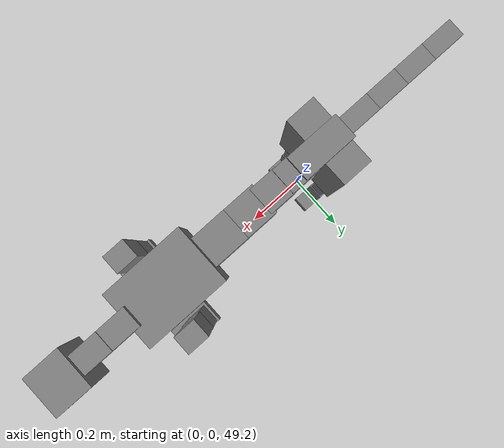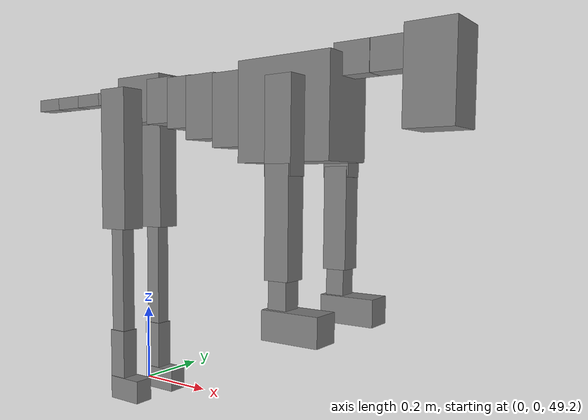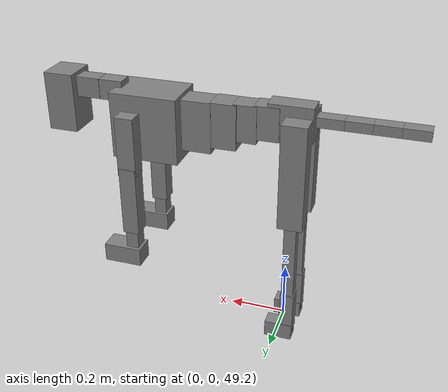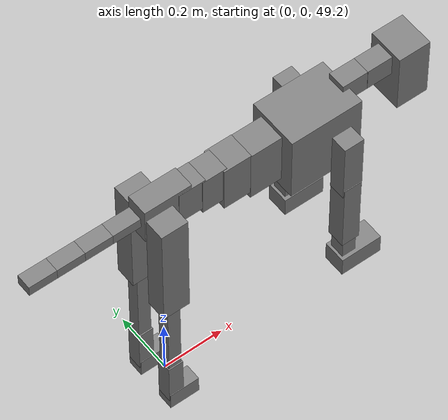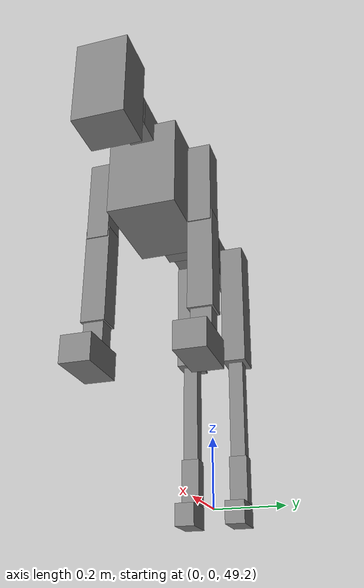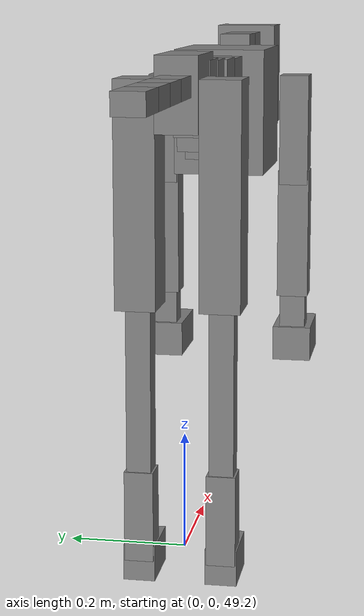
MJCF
<mujoco model="dog">

    <default>
        <joint armature="0.02" stiffness="1" damping="0.2" limited="true"/>
        <geom condim="3" friction="1 0.05 0.05" margin="0.01"/>
        <motor ctrllimited="true" ctrlrange="-1.0 1.0" forcelimited="true" gear="50"/>
    </default>

    <compiler inertiafromgeom="true" angle="radian"/>

    <option timestep="0.016" iterations="50" tolerance="1e-10" solver="Newton" jacobian="dense" cone="pyramidal"/>

    <size nconmax="20000" njmax="60000" nstack="5000000"/>
    <visual>
        <map force="0.1" zfar="30"/>
        <rgba haze="0.15 0.25 0.35 1"/>
        <quality shadowsize="2048"/>
        <global offwidth="800" offheight="800"/>
    </visual>

    <asset>
        <texture type="skybox" builtin="gradient" rgb1="0.3 0.5 0.7" rgb2="0 0 0" width="512" height="512"/>
        <texture name="texplane" type="2d" builtin="checker" rgb1=".2 .3 .4" rgb2=".1 0.15 0.2" width="512" height="512"
                 mark="cross" markrgb=".8 .8 .8"/>
        <texture name="texgeom" type="cube" builtin="flat" mark="cross" width="127" height="1278" rgb1="0.8 0.6 0.4"
                 rgb2="0.8 0.6 0.4" markrgb="1 1 1" random="0.01"/>

        <material name="matplane" reflectance="0.3" texture="texplane" texrepeat="1 1" texuniform="true"/>
        <material name="matgeom" texture="texgeom" texuniform="true" rgba="0.8 0.6 .4 1"/>
    </asset>

    <worldbody>
        <geom name="floor" pos="0 0 0" size="0 0 .25" type="plane" material="matplane" condim="3"/>

        <light directional="false" diffuse=".2 .2 .2" specular="0 0 0" pos="0 0 5" dir="0 0 -1" castshadow="false"/>
        <light mode="targetbodycom" target="torso" directional="false" diffuse=".8 .8 .8" specular="0.3 0.3 0.3"
               pos="0 0 4.0" dir="0 0 -1"/>

        <body name="root" pos="0 0 50">
            <freejoint name="root_1"/>
            <geom type="box" pos="0 0 -0.02" size="0.0774  0.0358  0.063" density="2030"/>

            <body name="spine1" pos="0.054 0 0">
                <joint name="spine1_y" axis="0 1 0" range="0 0.7" limited="true"/>
                <geom type="box" pos="0.02375 0 -0.03" size="0.04375  0.0375  0.05985" density="2030"/>

                <body name="spine2" pos="0.0612 0 0">
                    <joint name="spine2_y" axis="0 1 0" range="-0.15 0.15" limited="true"/>
                    <geom type="box" pos="0.03555  0  -0.04" size="0.04055  0.039  0.06615" density="2030"/>

                    <body name="spine3" pos="0.0730 0 0">
                        <joint name="spine3_y" axis="0 1 0" range="-0.15 0.15" limited="true"/>
                        <geom type="box" pos="0.03555  0  -0.057" size="0.04555  0.0445  0.081" density="2030"/>

                        <body name="spine4" pos="0.0780 0 0">
                            <joint name="spine4_y" axis="0 1 0" range="-0.15 0.15" limited="true"/>
                            <geom type="box" pos="0.05265  0  -0.07" size="0.05265  0.045  0.09135" density="2030"/>

                            <body name="torso" pos="0.1082 0 0">
                                <joint name="torso_y" axis="0 1 0" range="-0.15 0.15" limited="true"/>
                                <geom type="box" pos="0.11925  0  -0.085" size="0.11925  0.085  0.11745"
                                      density="2030"/>

                                <body name="neck1" pos="0.2160  0   0.0180">
                                    <joint name="neck1_y" axis="0 1 0" range="-1.2  -1" limited="true"/>
                                    <geom type="box" pos="0.0423  0  0" size="0.0423  0.03  0.036" density="2325"/>

                                    <body name="neck2" pos="0.0853  0  0">
                                        <joint name="neck2_y" axis="0 1 0" range="0.1  0" limited="true"/>
                                        <geom type="box" pos="0.0423  0  0" size="0.0423  0.03  0.036" density="2325"/>

                                        <body name="head" pos="0.0853  0  0">
                                            <joint name="head_y" axis="0 1 0" range="-0.3  -0.2" limited="true"/>
                                            <geom type="box" pos="0.0531  0  -0.055" size="0.0531  0.06  0.1044"
                                                  density="4030"/>

                                        </body>
                                    </body>
                                </body>

                                <body name="front_shoulder" pos="0.156  0   -0.0480">
                                    <joint name="front_shoulder_y" axis="0 1 0" range="-1 1.5" limited="true"/>
                                    <geom type="box" pos="0 0.13 -0.0803" size="0.0325  0.0278  0.1069" density="1158"/>
                                    <geom type="box" pos="0 -0.13 -0.0803" size="0.0325  0.0278  0.1069"
                                          density="1158"/>

                                    <body name="front_elbow" pos="0  0  -0.1606">
                                        <joint name="front_elbow_y" axis="0 1 0" range="-2 0" limited="true"/>
                                        <geom type="box" pos="0 0.13 -0.1254" size="0.0295  0.0301  0.1254"
                                              density="1081"/>
                                        <geom type="box" pos="0 -0.13 -0.1254" size="0.0295  0.0301  0.1254"
                                              density="1081"/>

                                        <body name="front_wrist" pos="0  0  -0.2508">
                                            <joint name="front_wrist_y" axis="0 1 0" range="-0.2 0" limited="true"/>
                                            <geom type="box" pos="0 0.13 -0.0391" size="0.0226  0.0251  0.0523"
                                                  density="1664"/>
                                            <geom type="box" pos="0 -0.13 -0.0391" size="0.0226  0.0251  0.0523"
                                                  density="1664"/>

                                            <body name="front_finger_end" pos="0  0  -0.0783">
                                                <joint name="front_finger_y" axis="0 1 0" range="-0.4 1"
                                                       limited="true"/>
                                                <geom type="box" pos="0.0373  0.13  -0.0185"
                                                      size="0.0685  0.0373  0.0335" density="1515"/>
                                                <geom type="box" pos="0.0373  -0.13  -0.0185"
                                                      size="0.0685  0.0373  0.0335" density="1515"/>

                                            </body>

                                        </body>
                                    </body>
                                </body>

                            </body>
                        </body>
                    </body>
                </body>
            </body>

            <body name="back_hip" pos="-0.03 0 -0.018">
                <joint name="back_hip_y" axis="0 1 0" range="-1.5 0.3" limited="true"/>
                <geom type="box" pos="0 0.07 -0.1665" size="0.0437  0.0343  0.1893" density="1154"/>
                <geom type="box" pos="0 -0.07 -0.1665" size="0.0437  0.0343  0.1893" density="1154"/>

                <body name="back_knee" pos="0  0  -0.3329">
                    <joint name="back_knee_y" axis="0 1 0" range="0 2.8" limited="true"/>
                    <geom type="box" pos="0 0.07 -0.1579" size="0.0213  0.0210  0.1734" density="1227"/>
                    <geom type="box" pos="0 -0.07 -0.1579" size="0.0213  0.0210  0.1734" density="1227"/>

                    <body name="back_ankle" pos="0  0  -0.3158">
                        <joint name="back_ankle_y" axis="0 1 0" range="-2.2 0" limited="true"/>
                        <geom type="box" pos="0 0.07 -0.0670" size="0.0248  0.0248  0.0782" density="1284"/>
                        <geom type="box" pos="0 -0.07 -0.0670" size="0.0248  0.0248  0.0782" density="1284"/>

                        <body name="back_toe_end" pos="0  0  -0.1340">
                            <joint name="back_toe_y" axis="0 1 0" range="-0.4 1" limited="true"/>
                            <geom type="box" pos="0.0271  0.07  -0.0158" size="0.0496  0.0271  0.0308" density="1515"/>
                            <geom type="box" pos="0.0271  -0.07  -0.0158" size="0.0496  0.0271  0.0308" density="1515"/>

                        </body>
                    </body>
                </body>
            </body>

            <body name="tail1" pos="-0.074 0 -0.006">
                <joint name="tail1_y" axis="0 1 0" range="-0.2 0.2" limited="true"/>
                <geom type="box" pos="-0.0536  0  0" size="0.045  0.025  0.0175" density="1587"/>

                <body name="tail2" pos="-0.09 0 0">
                    <joint name="tail2_y" axis="0 1 0" range="-0.2 0.2" limited="true"/>
                    <geom type="box" pos="-0.0536  0  0" size="0.045  0.025  0.0175" density="1587"/>

                    <body name="tail3" pos="-0.09 0 0">
                        <joint name="tail3_y" axis="0 1 0" range="-0.2 0.2" limited="true"/>
                        <geom type="box" pos="-0.0536  0  0" size="0.045  0.025  0.0175" density="1587"/>

                        <body name="tail4" pos="-0.09 0 0">
                            <joint name="tail4_y" axis="0 1 0" range="-0.2 0.2" limited="true"/>
                            <geom type="box" pos="-0.0536  0  0" size="0.045  0.025  0.0175" density="1587"/>

                        </body>
                    </body>
                </body>
            </body>
        </body>
    </worldbody>

    <actuator>
        <motor joint="spine1_y" forcerange="-150 150     "/>
        <motor joint="spine2_y" forcerange="-150 150     "/>
        <motor joint="spine3_y" forcerange="-150 150     "/>
        <motor joint="spine4_y" forcerange="-150 150     "/>
        <motor joint="torso_y" forcerange="-150 150     "/>
        <motor joint="neck1_y" forcerange="-100 100       "/>
        <motor joint="neck2_y" forcerange="-100 100       "/>
        <motor joint="head_y" forcerange="-150 150       "/>
        <motor joint="front_shoulder_y" forcerange="-128.44 156.98"/>
        <motor joint="front_elbow_y" forcerange="-179.09 140.09"/>
        <motor joint="front_wrist_y" forcerange="-71.97 128.66"/>
        <motor joint="front_finger_y" forcerange="-60.27 98.88"/>
        <motor joint="back_hip_y" forcerange="-334.23 322.54"/>
        <motor joint="back_knee_y" forcerange="-208.18 297.14"/>
        <motor joint="back_angle_y" forcerange="-195.87 100.46"/>
        <motor joint="back_toe_y" forcerange="-34.07 102.37"/>
        <motor joint="tail1_y" forcerange="-50 50     "/>
        <motor joint="tail2_y" forcerange="-50 50     "/>
        <motor joint="tail3_y" forcerange="-50 50     "/>
        <motor joint="tail4_y" forcerange="-50 50     "/>
    </actuator>
</mujoco>
